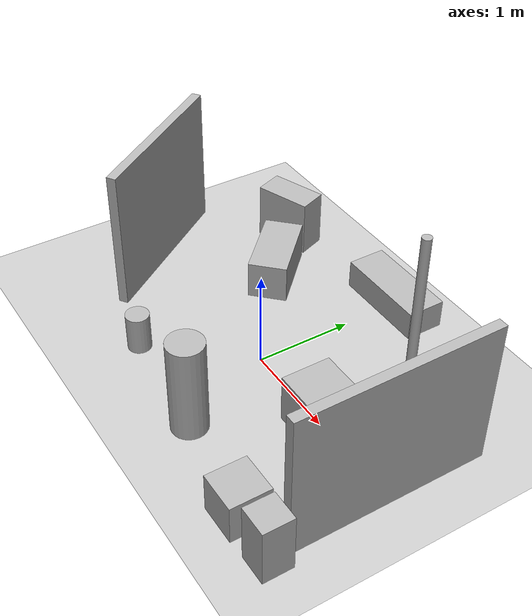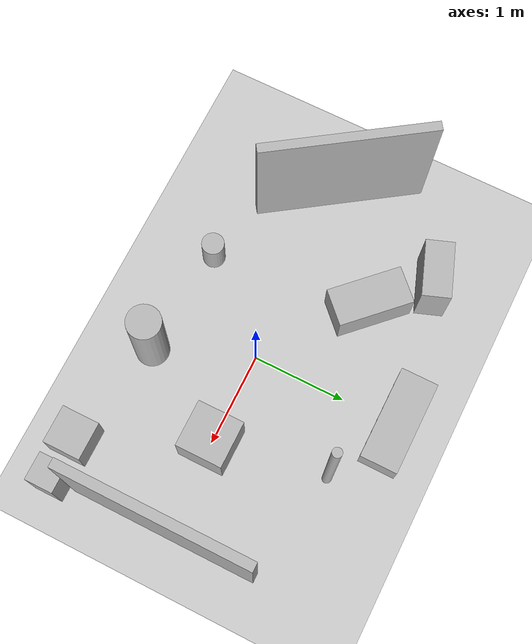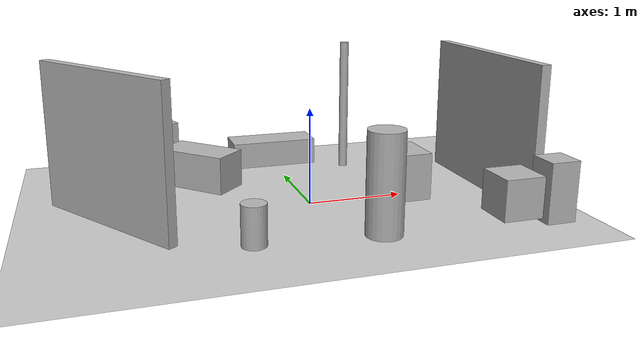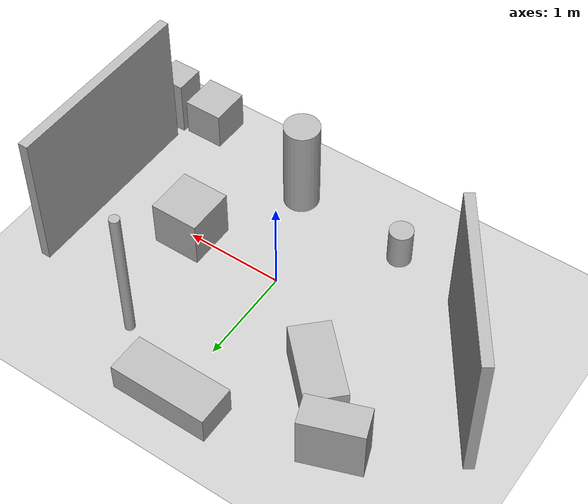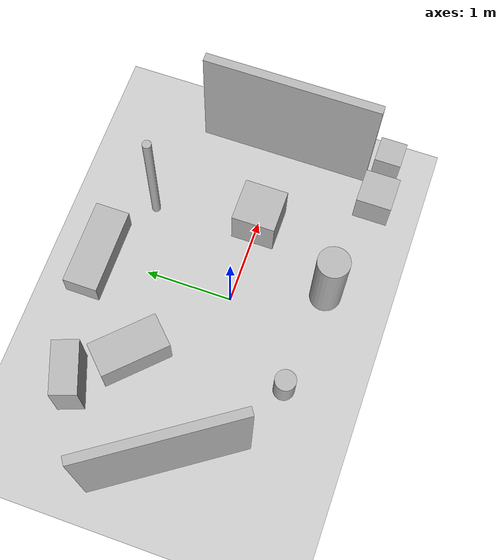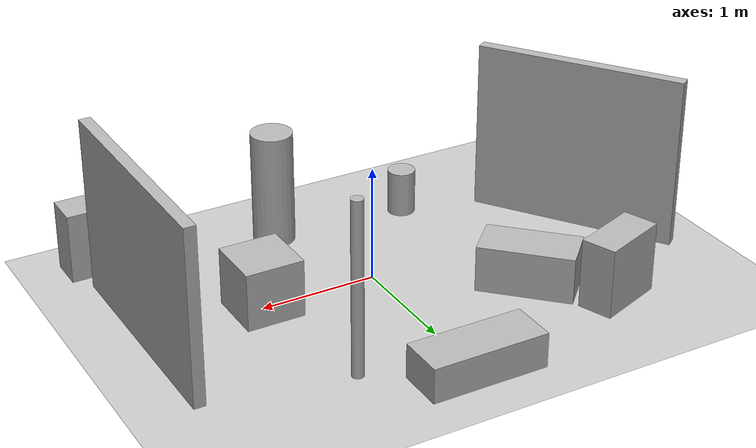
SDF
<?xml version="1.0" ?>
<sdf version="1.10">
  <world name="world">

    <!-- Light and ground -->
    <include>
      <uri>model://sun</uri>
    </include>

    <include>
      <uri>model://ground_plane</uri>
    </include>

    <!-- Floor friction patch (optional) -->
    <physics name="default_physics" type="ode">
      <max_step_size>0.001</max_step_size>
      <real_time_factor>1</real_time_factor>
    </physics>

    <!-- Spawn 10 unique obstacles placed around origin.
         Types: box, cylinder, wall (thin box). -->
    <!-- 1: Box A -->
    <model name="box_A">
      <static>true</static>
      <pose>1 0 0.25 0 0 0</pose>
      <link name="link">
        <visual name="v">
          <geometry>
            <box>
              <size>0.5 0.5 0.5</size>
            </box>
          </geometry>
        </visual>
        <collision name="c">
          <geometry>
            <box><size>0.5 0.5 0.5</size></box>
          </geometry>
        </collision>
      </link>
    </model>

    <!-- 2: Box B (rotated) -->
    <model name="box_B">
      <static>true</static>
      <pose>-1 0.8 0.25 0 0 0.7854</pose>
      <link name="link">
        <visual><geometry><box><size>0.4 0.8 0.4</size></box></geometry></visual>
        <collision><geometry><box><size>0.4 0.8 0.4</size></box></geometry></collision>
      </link>
    </model>

    <!-- 3: Tall Cylinder -->
    <model name="cylinder_tall">
      <static>true</static>
      <pose>0.4 -1 0.5 0 0 0</pose>
      <link name="link">
        <visual><geometry><cylinder><radius>0.18</radius><length>1.0</length></cylinder></geometry></visual>
        <collision><geometry><cylinder><radius>0.18</radius><length>1.0</length></cylinder></geometry></collision>
      </link>
    </model>

    <!-- 4: Short Cylinder -->
    <model name="cylinder_short">
      <static>true</static>
      <pose>-0.8 -0.9 0.2 0 0 0</pose>
      <link name="link">
        <visual><geometry><cylinder><radius>0.12</radius><length>0.4</length></cylinder></geometry></visual>
        <collision><geometry><cylinder><radius>0.12</radius><length>0.4</length></cylinder></geometry></collision>
      </link>
    </model>

    <!-- 5: Wall A (long thin box) -->
    <model name="wall_A">
      <static>true</static>
      <pose>2.0 0 0.75 0 0 0</pose>
      <link name="link">
        <visual><geometry><box><size>0.1 2.0 1.5</size></box></geometry></visual>
        <collision><geometry><box><size>0.1 2.0 1.5</size></box></geometry></collision>
      </link>
    </model>

    <!-- 6: Wall B (angled) -->
    <model name="wall_B">
      <static>true</static>
      <pose>-2.0 0 0.75 0 0 0.6</pose>
      <link name="link">
        <visual><geometry><box><size>0.1 1.8 1.5</size></box></geometry></visual>
        <collision><geometry><box><size>0.1 1.8 1.5</size></box></geometry></collision>
      </link>
    </model>

    <!-- 7: Low Ramp-like box -->
    <model name="low_ramp">
      <static>true</static>
      <pose>0 1.6 0.15 0 0 0</pose>
      <link name="link">
        <visual><geometry><box><size>1.0 0.4 0.3</size></box></geometry></visual>
        <collision><geometry><box><size>1.0 0.4 0.3</size></box></geometry></collision>
      </link>
    </model>

    <!-- 8: Tall thin pole (very thin cylinder) -->
    <model name="pole">
      <static>true</static>
      <pose>0.8 1.2 0.75 0 0 0</pose>
      <link name="link">
        <visual><geometry><cylinder><radius>0.05</radius><length>1.5</length></cylinder></geometry></visual>
        <collision><geometry><cylinder><radius>0.05</radius><length>1.5</length></cylinder></geometry></collision>
      </link>
    </model>

    <!-- 9: Irregular box (leaning) -->
    <model name="lean_box">
      <static>true</static>
      <pose>-1.5 1.3 0.35 0 0 0.35</pose>
      <link name="link">
        <visual><geometry><box><size>0.6 0.3 0.6</size></box></geometry></visual>
        <collision><geometry><box><size>0.6 0.3 0.6</size></box></geometry></collision>
      </link>
    </model>

    <!-- 10: Composite block (two boxes close) -->
    <model name="composite_block">
      <static>true</static>
      <pose>1.6 -1.2 0.35 0 0 0</pose>
      <link name="b1">
        <visual><geometry><box><size>0.4 0.4 0.4</size></box></geometry></visual>
        <collision><geometry><box><size>0.4 0.4 0.4</size></box></geometry></collision>
      </link>
      <link name="b2">
        <pose>0.45 0 0 0 0 0</pose>
        <visual><geometry><box><size>0.3 0.3 0.6</size></box></geometry></visual>
        <collision><geometry><box><size>0.3 0.3 0.6</size></box></geometry></collision>
      </link>
    </model>

    <!-- Optional: spawn your robot from URDF via the ROS2 spawn node (see launch file) -->

  </world>
</sdf>
